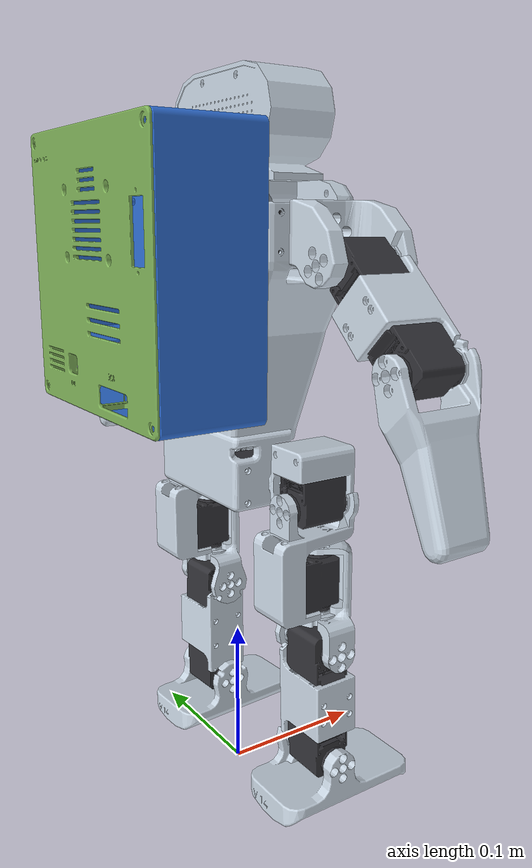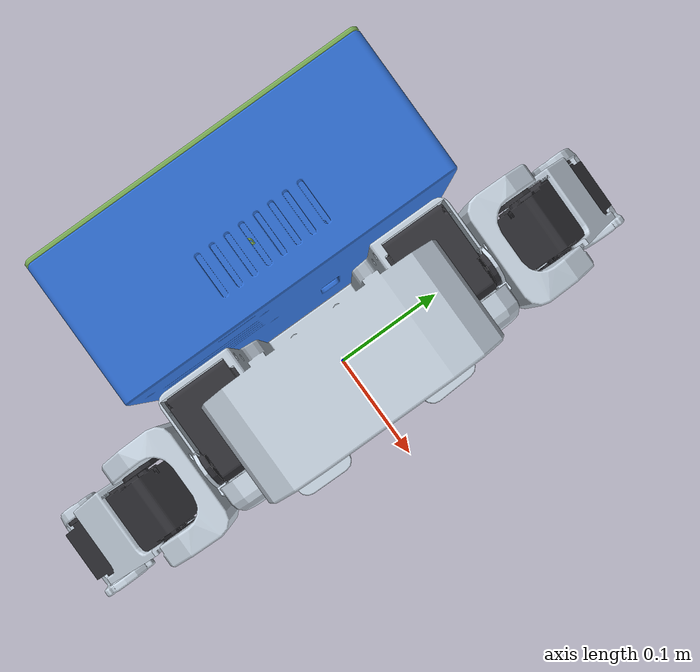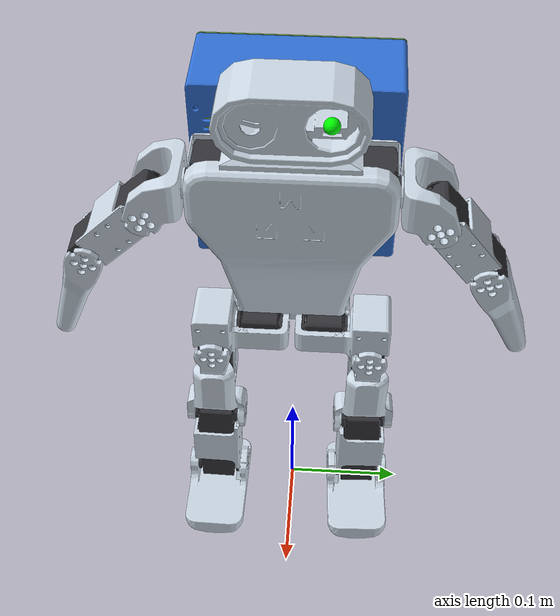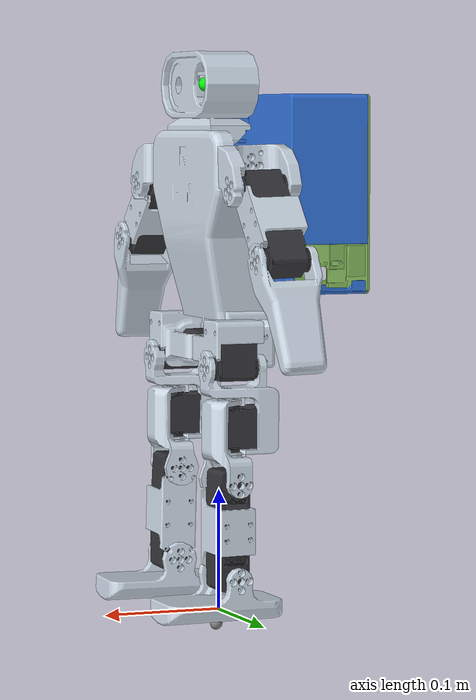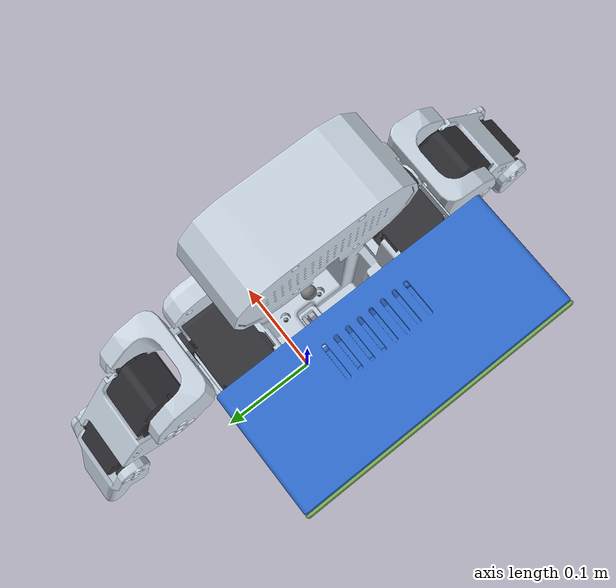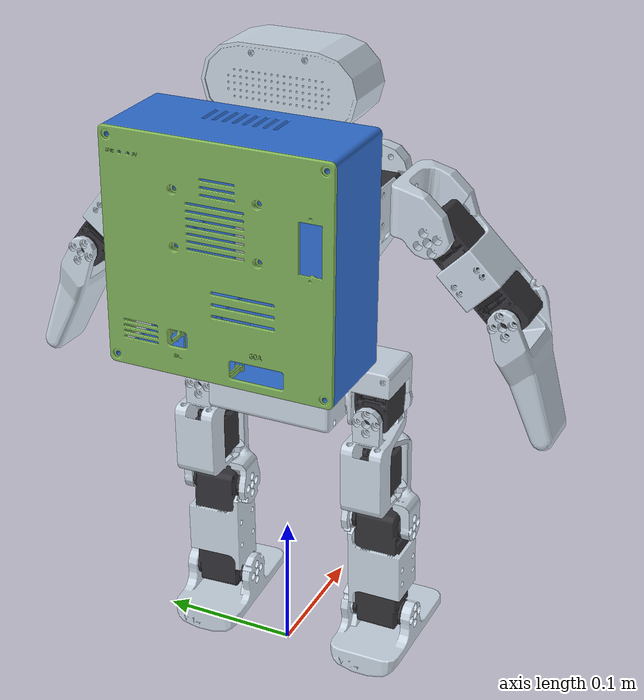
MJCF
<mujoco model="zeroth01_cad">
  <default>
    <default class="robot">
      <default class="motor">
        <joint />
        <motor />
      </default>
      <default class="visual">
        <geom contype="0" conaffinity="0" group="2" />
      </default>
      <default class="collision">
        <geom condim="6" friction="0.8 0.02 0.01" group="3" />
      </default>
    </default>
    <mesh maxhullvert="32" />
  </default>
  <compiler angle="radian" />
  <asset>
    <material name="printed_material" rgba="0.80 0.85 0.90 1" />
    <material name="servo_material" rgba="0.20 0.20 0.22 1" />
    <material name="backpack_base_material" rgba="0.19 0.44 0.84 1" />
    <material name="backpack_lid_material" rgba="0.50 0.70 0.35 1" />
    <material name="backpack_insert_material" rgba="0.78 0.63 0.23 1" />
    <material name="imu_material" rgba="0 1 0 1" />
    <mesh name="base_printed.stl" file="meshes/base_printed.stl" />
    <mesh name="base_servos.stl" file="meshes/base_servos.stl" />
    <mesh name="right_hip_pitch_link_printed.stl" file="meshes/right_hip_pitch_link_printed.stl" />
    <mesh name="right_hip_pitch_link_servos.stl" file="meshes/right_hip_pitch_link_servos.stl" />
    <mesh name="right_hip_yaw_link_printed.stl" file="meshes/right_hip_yaw_link_printed.stl" />
    <mesh name="right_hip_yaw_link_servos.stl" file="meshes/right_hip_yaw_link_servos.stl" />
    <mesh name="right_knee_pitch_link_printed.stl" file="meshes/right_knee_pitch_link_printed.stl" />
    <mesh name="right_knee_pitch_link_servos.stl" file="meshes/right_knee_pitch_link_servos.stl" />
    <mesh name="left_hip_pitch_link_printed.stl" file="meshes/left_hip_pitch_link_printed.stl" />
    <mesh name="left_hip_pitch_link_servos.stl" file="meshes/left_hip_pitch_link_servos.stl" />
    <mesh name="left_hip_yaw_link_printed.stl" file="meshes/left_hip_yaw_link_printed.stl" />
    <mesh name="left_hip_yaw_link_servos.stl" file="meshes/left_hip_yaw_link_servos.stl" />
    <mesh name="left_knee_pitch_link_printed.stl" file="meshes/left_knee_pitch_link_printed.stl" />
    <mesh name="left_knee_pitch_link_servos.stl" file="meshes/left_knee_pitch_link_servos.stl" />
    <mesh name="right_shoulder_yaw_link_printed.stl" file="meshes/right_shoulder_yaw_link_printed.stl" />
    <mesh name="right_shoulder_yaw_link_servos.stl" file="meshes/right_shoulder_yaw_link_servos.stl" />
    <mesh name="left_shoulder_yaw_link_printed.stl" file="meshes/left_shoulder_yaw_link_printed.stl" />
    <mesh name="left_shoulder_yaw_link_servos.stl" file="meshes/left_shoulder_yaw_link_servos.stl" />
    <mesh name="right_shoulder_pitch_link_printed.stl" file="meshes/right_shoulder_pitch_link_printed.stl" />
    <mesh name="left_shoulder_pitch_link_printed.stl" file="meshes/left_shoulder_pitch_link_printed.stl" />
    <mesh name="right_hip_roll_link_printed.stl" file="meshes/right_hip_roll_link_printed.stl" />
    <mesh name="left_hip_roll_link_printed.stl" file="meshes/left_hip_roll_link_printed.stl" />
    <mesh name="right_elbow_yaw_link_printed.stl" file="meshes/right_elbow_yaw_link_printed.stl" />
    <mesh name="left_elbow_yaw_link_printed.stl" file="meshes/left_elbow_yaw_link_printed.stl" />
    <mesh name="left_ankle_pitch_link_printed.stl" file="meshes/left_ankle_pitch_link_printed.stl" />
    <mesh name="right_ankle_pitch_link_printed.stl" file="meshes/right_ankle_pitch_link_printed.stl" />
    <mesh name="backpack_base.stl" file="meshes/backpack_base.stl" />
    <mesh name="backpack_lid.stl" file="meshes/backpack_lid.stl" />
  </asset>
  <worldbody>
    <body name="base" pos="0 0 0.320642" childclass="robot">
      <freejoint name="floating_base" />
      <inertial pos="0.000323 0.000762 -0.003690" mass="0.803905" fullinertia="5.287e-03 4.172e-03 1.643e-03 -6.627e-07 -3.034e-04 -2.809e-05" />
      <geom name="base_printed_visual" material="printed_material" type="mesh" mesh="base_printed.stl" class="visual" />
      <geom name="base_servos_visual" material="servo_material" type="mesh" mesh="base_servos.stl" class="visual" />
      <site name="base" pos="0 0 0" size="0.005" />
      <site name="imu" pos="0.021745 0.027420 0.114280" quat="0.500000 0.500000 -0.500000 -0.500000" size="0.006" rgba="0 1 0 1" />
      <body name="backpack" pos="0 0 0">
        <!-- backpack v4.2 (hardware/backpack_v2), 574 g: components from hardware/mass_model.json (datasheets), printed shells from mesh volume -->
        <inertial pos="-0.062732 -0.010771 0.010640" mass="0.5737" fullinertia="2.583e-03 1.755e-03 1.372e-03 6.197e-05 6.818e-05 -8.355e-05" />
        <geom name="backpack_base_visual" material="backpack_base_material" type="mesh" mesh="backpack_base.stl" class="visual" />
        <geom name="backpack_lid_visual" material="backpack_lid_material" type="mesh" mesh="backpack_lid.stl" class="visual" />
      </body>
      <body name="right_shoulder_pitch_link" pos="0.006375 -0.078150 0.048640">
        <joint name="right_shoulder_pitch" type="hinge" ref="0.0" class="motor" range="-1.658063 0.000000" axis="0.000000 1.000000 0.000000" />
        <inertial pos="0.000190 -0.016688 -0.003040" mass="0.026900" fullinertia="6.643e-06 1.454e-05 1.480e-05 5.220e-08 3.725e-08 -1.118e-06" />
        <geom name="right_shoulder_pitch_link_printed_visual" material="printed_material" type="mesh" mesh="right_shoulder_pitch_link_printed.stl" class="visual" />
        <body name="right_shoulder_yaw_link" pos="0.018884 -0.030000 -0.016231">
          <joint name="right_shoulder_yaw" type="hinge" ref="0.0" class="motor" range="-0.872665 0.785398" axis="0.999993 0.000000 0.003625" />
          <inertial pos="-0.018629 -0.025354 -0.024959" mass="0.120108" fullinertia="9.743e-05 6.360e-05 6.481e-05 3.722e-08 2.765e-08 -2.730e-05" />
          <geom name="right_shoulder_yaw_link_printed_visual" material="printed_material" type="mesh" mesh="right_shoulder_yaw_link_printed.stl" class="visual" />
          <geom name="right_shoulder_yaw_link_servos_visual" material="servo_material" type="mesh" mesh="right_shoulder_yaw_link_servos.stl" class="visual" />
          <body name="right_elbow_yaw_link" pos="0.000030 -0.050677 -0.049719">
            <joint name="right_elbow_yaw" type="hinge" ref="0.0" class="motor" range="-1.047198 1.745329" axis="-0.999993 0.000000 -0.003625" />
            <inertial pos="-0.018195 -0.015063 -0.043193" mass="0.046890" fullinertia="2.858e-05 3.231e-05 1.265e-05 -3.016e-07 -8.584e-07 -7.941e-06" />
            <geom name="right_elbow_yaw_link_printed_visual" material="printed_material" type="mesh" mesh="right_elbow_yaw_link_printed.stl" class="visual" />
          </body>
        </body>
      </body>
      <body name="left_shoulder_pitch_link" pos="0.006375 0.078150 0.048640">
        <joint name="left_shoulder_pitch" type="hinge" ref="0.0" class="motor" range="0.000000 1.658063" axis="0.000000 -1.000000 0.000000" />
        <inertial pos="0.000077 0.016687 -0.003048" mass="0.026899" fullinertia="6.655e-06 1.454e-05 1.479e-05 -1.437e-08 3.085e-07 1.120e-06" />
        <geom name="left_shoulder_pitch_link_printed_visual" material="printed_material" type="mesh" mesh="left_shoulder_pitch_link_printed.stl" class="visual" />
        <body name="left_shoulder_yaw_link" pos="0.018328 0.030000 -0.016856">
          <joint name="left_shoulder_yaw" type="hinge" ref="0.0" class="motor" range="-0.872665 0.785398" axis="0.999551 0.000000 -0.029977" />
          <inertial pos="-0.019557 0.021566 -0.027612" mass="0.120109" fullinertia="9.812e-05 7.441e-05 5.556e-05 1.359e-06 -1.764e-06 2.650e-05" />
          <geom name="left_shoulder_yaw_link_printed_visual" material="printed_material" type="mesh" mesh="left_shoulder_yaw_link_printed.stl" class="visual" />
          <geom name="left_shoulder_yaw_link_servos_visual" material="servo_material" type="mesh" mesh="left_shoulder_yaw_link_servos.stl" class="visual" />
          <body name="left_elbow_yaw_link" pos="-0.001841 0.043105 -0.056381">
            <joint name="left_elbow_yaw" type="hinge" ref="0.0" class="motor" range="-1.658063 1.221730" axis="-0.999551 0.000000 0.029977" />
            <inertial pos="-0.019604 0.017703 -0.041567" mass="0.046912" fullinertia="2.856e-05 3.130e-05 1.378e-05 6.598e-07 -1.339e-06 9.091e-06" />
            <geom name="left_elbow_yaw_link_printed_visual" material="printed_material" type="mesh" mesh="left_elbow_yaw_link_printed.stl" class="visual" />
          </body>
        </body>
      </body>
      <body name="right_hip_pitch_link" pos="0.006375 -0.045650 -0.101360">
        <joint name="right_hip_pitch" type="hinge" ref="0.0" class="motor" range="-0.785398 1.570796" axis="-0.000000 1.000000 -0.000000" />
        <inertial pos="0.007048 -0.016370 0.001290" mass="0.090709" fullinertia="3.076e-05 2.692e-05 2.644e-05 -1.026e-06 1.286e-07 4.808e-07" />
        <geom name="right_hip_pitch_link_printed_visual" material="printed_material" type="mesh" mesh="right_hip_pitch_link_printed.stl" class="visual" />
        <geom name="right_hip_pitch_link_servos_visual" material="servo_material" type="mesh" mesh="right_hip_pitch_link_servos.stl" class="visual" />
        <body name="right_hip_yaw_link" pos="0.025500 -0.019360 -0.012502">
          <joint name="right_hip_yaw" type="hinge" ref="0.0" class="motor" range="-0.052360 1.570796" axis="-1.000000 0.000000 0.000051" />
          <inertial pos="-0.028084 -0.000834 -0.044179" mass="0.095601" fullinertia="3.102e-05 4.556e-05 2.604e-05 -1.581e-07 -3.389e-06 -4.129e-07" />
          <geom name="right_hip_yaw_link_printed_visual" material="printed_material" type="mesh" mesh="right_hip_yaw_link_printed.stl" class="visual" />
          <geom name="right_hip_yaw_link_servos_visual" material="servo_material" type="mesh" mesh="right_hip_yaw_link_servos.stl" class="visual" />
          <body name="right_hip_roll_link" pos="-0.015004 -0.001336 -0.067746">
            <joint name="right_hip_roll" type="hinge" ref="0.0" class="motor" range="-0.872665 0.872665" axis="-0.000050 -0.019712 -0.999806" />
            <inertial pos="0.005880 0.000983 0.001762" mass="0.017221" fullinertia="1.109e-05 8.586e-06 5.175e-06 5.074e-08 -1.505e-06 4.693e-07" />
            <geom name="right_hip_roll_link_printed_visual" material="printed_material" type="mesh" mesh="right_hip_roll_link_printed.stl" class="visual" />
            <body name="right_knee_pitch_link" pos="0.000163 0.018334 -0.025076">
              <joint name="right_knee_pitch" type="hinge" ref="0.0" class="motor" range="-1.483530 1.483530" axis="0.008728 0.999768 -0.019711" />
              <inertial pos="0.000593 -0.019422 -0.038467" mass="0.161381" fullinertia="1.531e-04 1.419e-04 3.099e-05 4.555e-08 1.969e-06 -3.016e-06" />
              <geom name="right_knee_pitch_link_printed_visual" material="printed_material" type="mesh" mesh="right_knee_pitch_link_printed.stl" class="visual" />
              <geom name="right_knee_pitch_link_servos_visual" material="servo_material" type="mesh" mesh="right_knee_pitch_link_servos.stl" class="visual" />
              <body name="right_ankle_pitch_link" pos="0.001522 -0.001545 -0.077690">
                <joint name="right_ankle_pitch" type="hinge" ref="0.0" class="motor" range="-1.570796 1.483530" axis="-0.008728 -0.999768 0.019711" />
                <inertial pos="0.009116 -0.019139 -0.022637" mass="0.065874" fullinertia="1.864e-05 5.356e-05 6.423e-05 5.628e-07 5.967e-07 -4.736e-07" />
                <geom name="right_ankle_pitch_link_printed_visual" material="printed_material" type="mesh" mesh="right_ankle_pitch_link_printed.stl" class="visual" />
                <geom name="Right_Foot_collision_box" type="box" pos="0.010162 -0.019041 -0.029275" size="0.050144 0.026807 0.005993" class="collision" />
                <site name="right_foot" pos="0.010162 -0.019041 -0.037268" size="0.005" />
              </body>
            </body>
          </body>
        </body>
      </body>
      <body name="left_hip_pitch_link" pos="0.006375 0.045650 -0.101360">
        <joint name="left_hip_pitch" type="hinge" ref="0.0" class="motor" range="-1.570796 0.785398" axis="-0.000000 -1.000000 -0.000000" />
        <inertial pos="0.007035 0.016370 0.001281" mass="0.090709" fullinertia="3.078e-05 2.696e-05 2.645e-05 1.030e-06 1.259e-07 -4.828e-07" />
        <geom name="left_hip_pitch_link_printed_visual" material="printed_material" type="mesh" mesh="left_hip_pitch_link_printed.stl" class="visual" />
        <geom name="left_hip_pitch_link_servos_visual" material="servo_material" type="mesh" mesh="left_hip_pitch_link_servos.stl" class="visual" />
        <body name="left_hip_yaw_link" pos="0.025480 0.019360 -0.012539">
          <joint name="left_hip_yaw" type="hinge" ref="0.0" class="motor" range="-1.570796 0.087266" axis="-0.999999 0.000000 0.001541" />
          <inertial pos="-0.028149 -0.000799 -0.044152" mass="0.095602" fullinertia="3.098e-05 4.559e-05 2.605e-05 3.142e-08 -3.405e-06 -1.228e-07" />
          <geom name="left_hip_yaw_link_printed_visual" material="printed_material" type="mesh" mesh="left_hip_yaw_link_printed.stl" class="visual" />
          <geom name="left_hip_yaw_link_servos_visual" material="servo_material" type="mesh" mesh="left_hip_yaw_link_servos.stl" class="visual" />
          <body name="left_hip_roll_link" pos="-0.015104 -0.001183 -0.067727">
            <joint name="left_hip_roll" type="hinge" ref="0.0" class="motor" range="-0.785398 0.733038" axis="-0.001541 -0.017453 -0.999847" />
            <inertial pos="0.005918 -0.000661 0.001779" mass="0.017223" fullinertia="1.109e-05 8.541e-06 5.222e-06 2.757e-09 -1.487e-06 -6.594e-07" />
            <geom name="left_hip_roll_link_printed_visual" material="printed_material" type="mesh" mesh="left_hip_roll_link_printed.stl" class="visual" />
            <body name="left_knee_pitch_link" pos="0.000947 -0.019228 -0.024379">
              <joint name="left_knee_pitch" type="hinge" ref="0.0" class="motor" range="-1.554041 1.413019" axis="0.052363 -0.998477 0.017348" />
              <inertial pos="-0.001220 0.017708 -0.039181" mass="0.161381" fullinertia="1.534e-04 1.421e-04 3.203e-05 5.365e-08 -4.523e-07 -3.666e-06" />
              <geom name="left_knee_pitch_link_printed_visual" material="printed_material" type="mesh" mesh="left_knee_pitch_link_printed.stl" class="visual" />
              <geom name="left_knee_pitch_link_servos_visual" material="servo_material" type="mesh" mesh="left_knee_pitch_link_servos.stl" class="visual" />
              <body name="left_ankle_pitch_link" pos="-0.000453 -0.001874 -0.077698">
                <joint name="left_ankle_pitch" type="hinge" ref="0.0" class="motor" range="-1.570796 1.570796" axis="-0.052363 0.998477 -0.017348" />
                <inertial pos="0.008127 0.018638 -0.023402" mass="0.065878" fullinertia="1.876e-05 5.350e-05 6.417e-05 -2.077e-06 9.362e-07 9.081e-07" />
                <geom name="left_ankle_pitch_link_printed_visual" material="printed_material" type="mesh" mesh="left_ankle_pitch_link_printed.stl" class="visual" />
                <geom name="Left_Foot_collision_box" type="box" pos="0.009095 0.019261 -0.029665" size="0.050832 0.028861 0.005986" class="collision" />
                <site name="left_foot" pos="0.009095 0.019261 -0.037651" size="0.005" />
              </body>
            </body>
          </body>
        </body>
      </body>
    </body>
  </worldbody>
  <actuator>
    <motor name="right_shoulder_pitch_ctrl" joint="right_shoulder_pitch" class="motor" />
    <motor name="right_shoulder_yaw_ctrl" joint="right_shoulder_yaw" class="motor" />
    <motor name="right_elbow_yaw_ctrl" joint="right_elbow_yaw" class="motor" />
    <motor name="left_shoulder_pitch_ctrl" joint="left_shoulder_pitch" class="motor" />
    <motor name="left_shoulder_yaw_ctrl" joint="left_shoulder_yaw" class="motor" />
    <motor name="left_elbow_yaw_ctrl" joint="left_elbow_yaw" class="motor" />
    <motor name="right_hip_pitch_ctrl" joint="right_hip_pitch" class="motor" />
    <motor name="right_hip_yaw_ctrl" joint="right_hip_yaw" class="motor" />
    <motor name="right_hip_roll_ctrl" joint="right_hip_roll" class="motor" />
    <motor name="right_knee_pitch_ctrl" joint="right_knee_pitch" class="motor" />
    <motor name="right_ankle_pitch_ctrl" joint="right_ankle_pitch" class="motor" />
    <motor name="left_hip_pitch_ctrl" joint="left_hip_pitch" class="motor" />
    <motor name="left_hip_yaw_ctrl" joint="left_hip_yaw" class="motor" />
    <motor name="left_hip_roll_ctrl" joint="left_hip_roll" class="motor" />
    <motor name="left_knee_pitch_ctrl" joint="left_knee_pitch" class="motor" />
    <motor name="left_ankle_pitch_ctrl" joint="left_ankle_pitch" class="motor" />
  </actuator>
  <contact>
    <pair geom1="Left_Foot_collision_box" geom2="floor" />
    <pair geom1="Right_Foot_collision_box" geom2="floor" />
  </contact>
  <sensor>
    <accelerometer name="imu_acc" site="imu" noise="0.01" />
    <gyro name="imu_gyro" site="imu" noise="0.01" />
    <magnetometer name="imu_mag" site="imu" noise="0.05" />
    <framepos name="base_link_pos" objtype="site" objname="base" />
    <framequat name="base_link_quat" objtype="site" objname="base" />
    <framelinvel name="base_link_vel" objtype="site" objname="base" />
    <frameangvel name="base_link_ang_vel" objtype="site" objname="base" />
    <force name="left_foot_force" site="left_foot" />
    <force name="right_foot_force" site="right_foot" />
  </sensor>
</mujoco>
